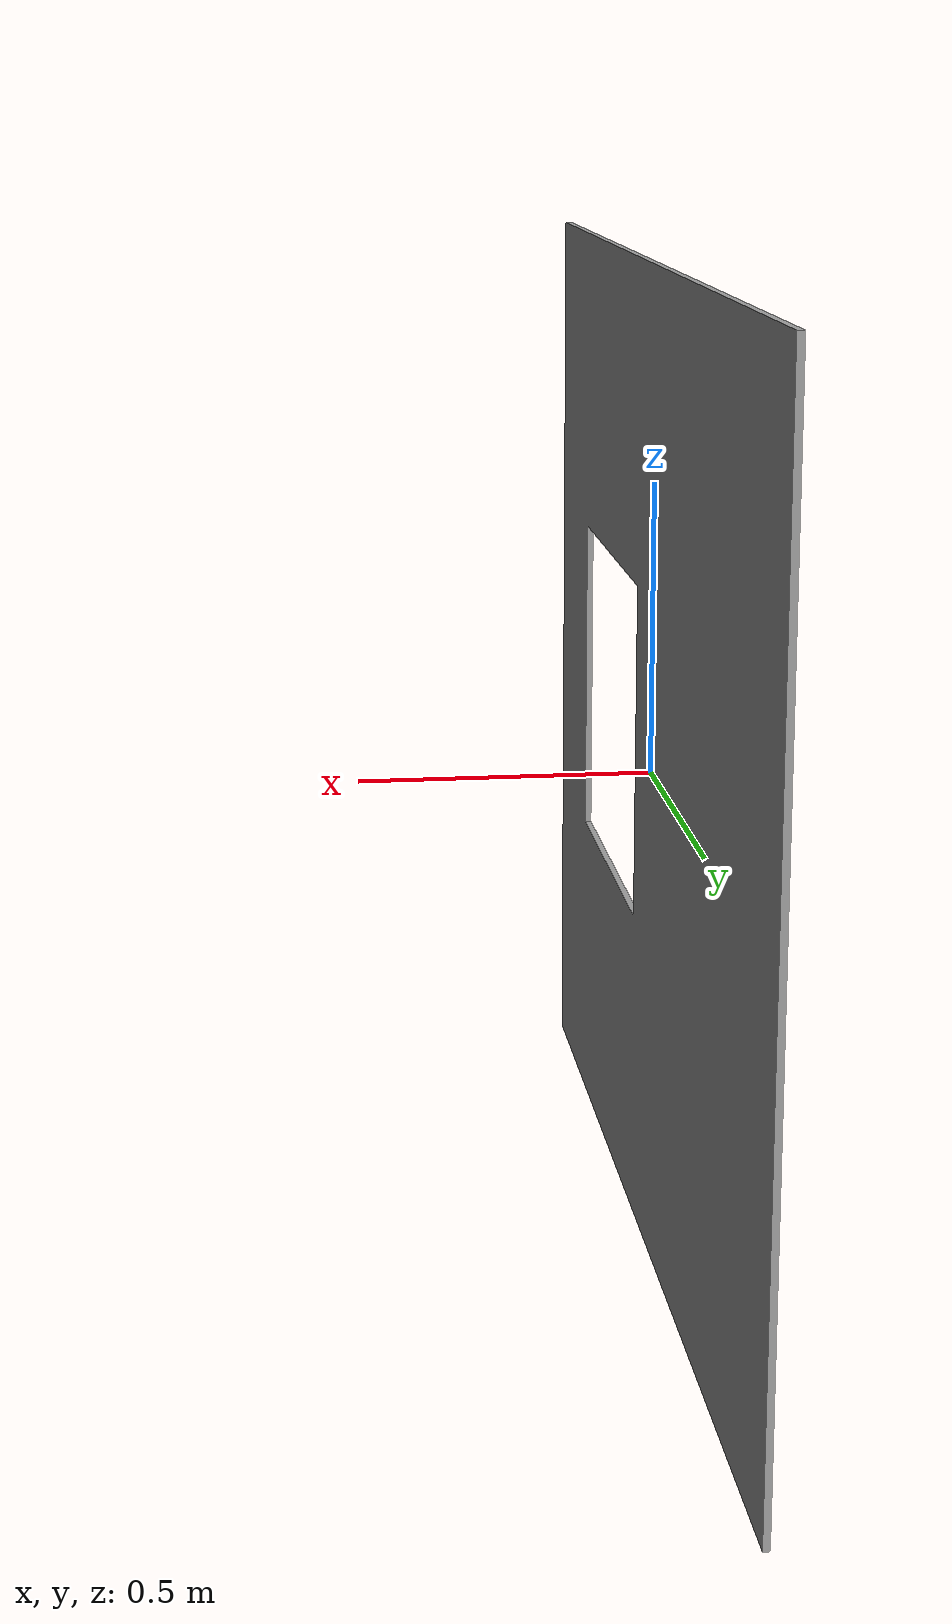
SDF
<?xml version="1.0"?>
<sdf version="1.5">
  <model name="torpedo_board">
    <static>true</static>
    <link name="board">
      <collision name='boardcol'>
        <pose>0 0 0 1.57 1.57 1.57</pose>
        <geometry>
          <mesh>
            <uri>file://torpedo_board/board.dae</uri>
            <scale>.3 .3 .3</scale>
          </mesh>
        </geometry>
      </collision>
      <visual name="boardvis">
        <pose>0 0 0 1.57 1.57 1.57</pose>
        <geometry>
          <mesh>
            <uri>file://torpedo_board/board.dae</uri>
            <scale>.3 .3 .3</scale>
          </mesh>
        </geometry>
      </visual>
    </link>
    <link name="hole_1">
      <collision name='hole_1_col'>
        <pose>0 0 0 1.57 1.57 1.57</pose>
        <geometry>
          <mesh>
            <uri>file://torpedo_board/hole.dae</uri>
            <scale>.3 .3 .3</scale>
          </mesh>
        </geometry>
      </collision>
    </link>
  </model>
</sdf>
